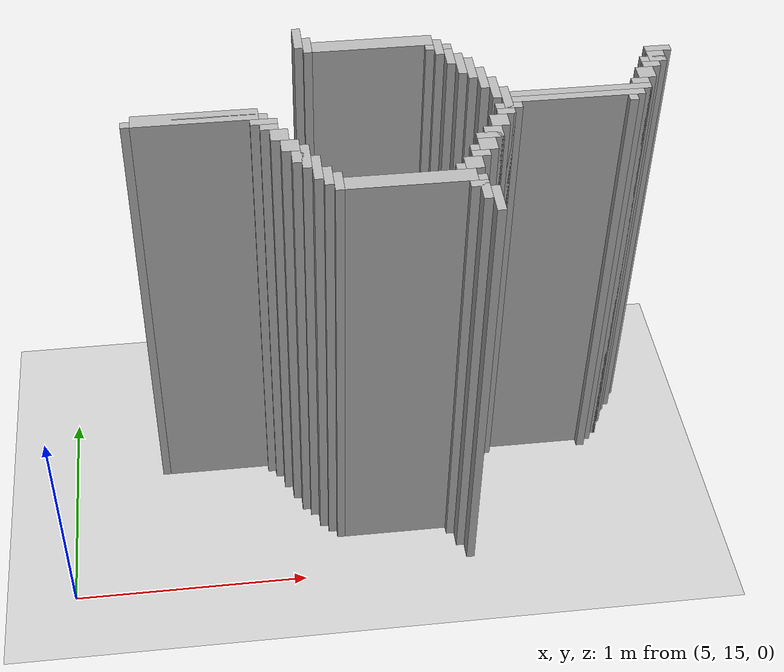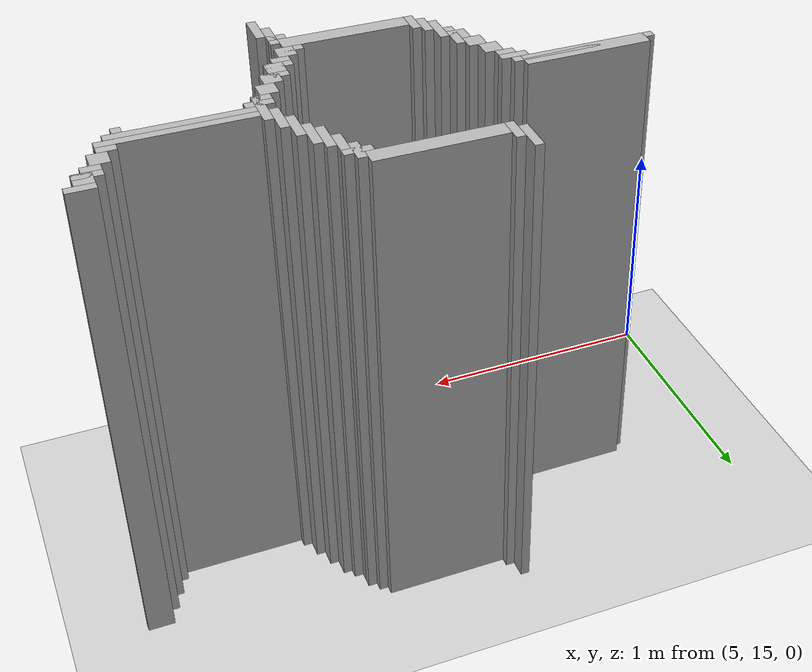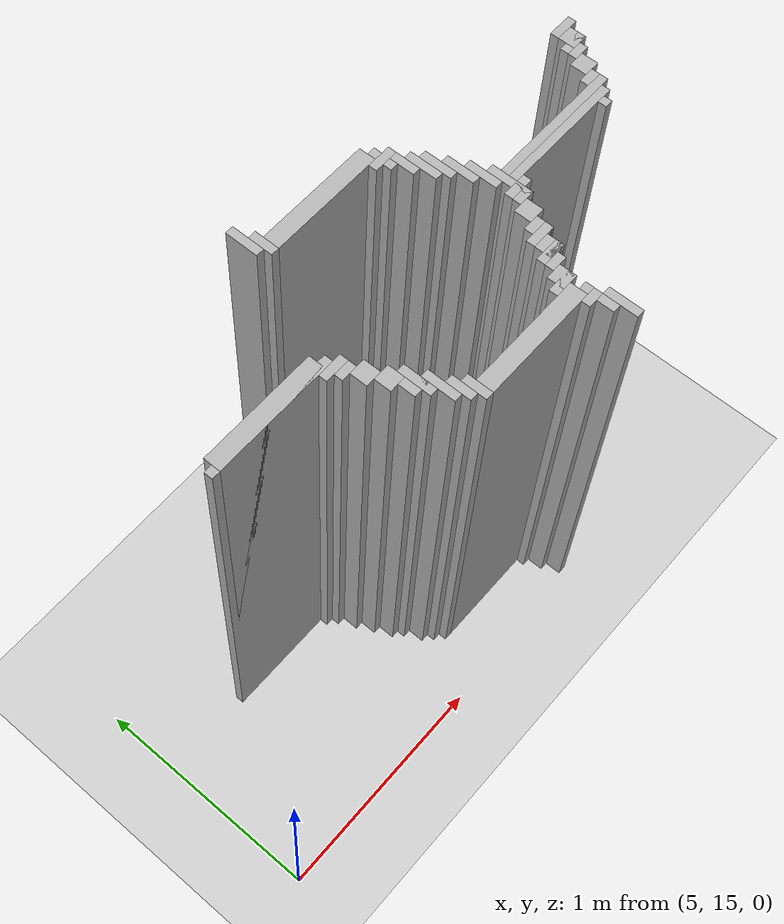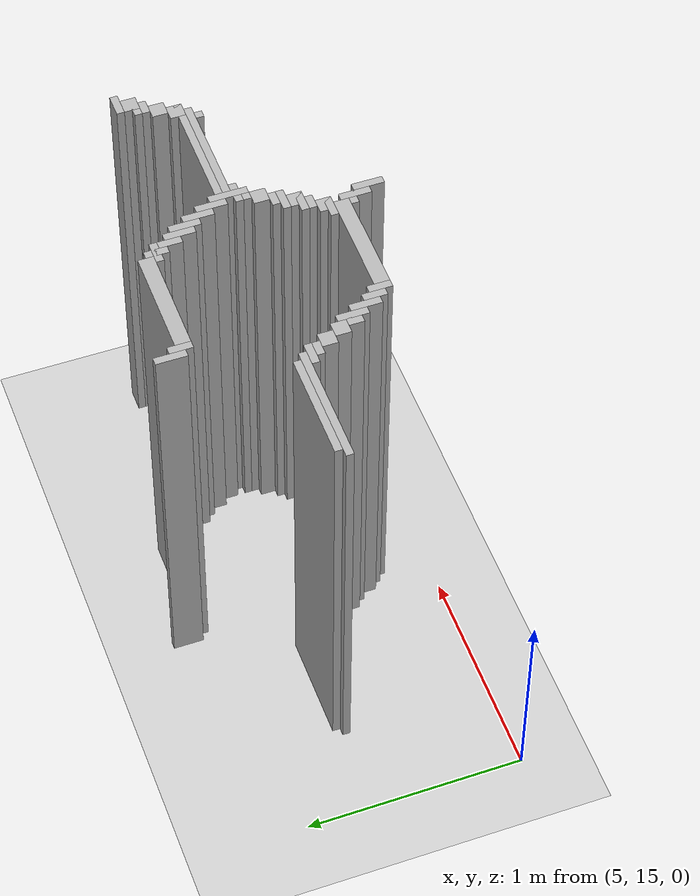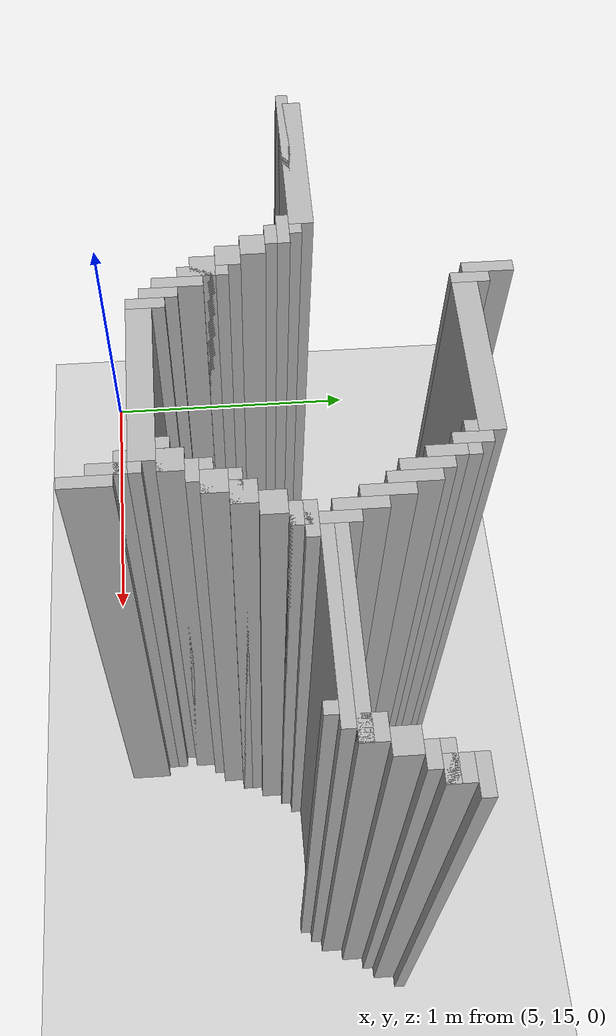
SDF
<sdf version="1.6">
 <world name="slam_world">
  <model name="ground_plane">
   <static>true</static>
   <link name="link">
    <collision name="collision">
     <geometry><plane><normal>0 0 1</normal><size>100 100</size></plane></geometry>
    </collision>
    <visual name="visual">
     <geometry><plane><normal>0 0 1</normal><size>100 100</size></plane></geometry>
     <material>
      <ambient>0.8 0.8 0.8 1</ambient>
      <diffuse>0.8 0.8 0.8 1</diffuse>
      <specular>0.8 0.8 0.8 1</specular>
     </material>
    </visual>
   </link>
  </model>
  <model name="wall_373">
   <static>true</static>
   <pose>6.107888631090487 16.183294663573086 1.0 0 0 0</pose>
   <link name="link">
    <collision name="collision">
     <geometry><box><size>0.03480278422273782 0.13921113689095127 2.0</size></box></geometry>
    </collision>
    <visual name="visual">
     <geometry><box><size>0.03480278422273782 0.13921113689095127 2.0</size></box></geometry>
     <material><ambient>0.5 0.5 0.5 1</ambient><diffuse>0.7 0.7 0.7 1</diffuse></material>
    </visual>
   </link>
  </model>
  <model name="wall_395">
   <static>true</static>
   <pose>6.142691415313225 16.13109048723898 1.0 0 0 0</pose>
   <link name="link">
    <collision name="collision">
     <geometry><box><size>0.03480278422273782 0.10440835266821345 2.0</size></box></geometry>
    </collision>
    <visual name="visual">
     <geometry><box><size>0.03480278422273782 0.10440835266821345 2.0</size></box></geometry>
     <material><ambient>0.5 0.5 0.5 1</ambient><diffuse>0.7 0.7 0.7 1</diffuse></material>
    </visual>
   </link>
  </model>
  <model name="wall_409">
   <static>true</static>
   <pose>6.403712296983758 16.113689095127608 1.0 0 0 0</pose>
   <link name="link">
    <collision name="collision">
     <geometry><box><size>0.4872389791183295 0.06960556844547564 2.0</size></box></geometry>
    </collision>
    <visual name="visual">
     <geometry><box><size>0.4872389791183295 0.06960556844547564 2.0</size></box></geometry>
     <material><ambient>0.5 0.5 0.5 1</ambient><diffuse>0.7 0.7 0.7 1</diffuse></material>
    </visual>
   </link>
  </model>
  <model name="wall_421">
   <static>true</static>
   <pose>6.664733178654292 16.061484918793504 1.0 0 0 0</pose>
   <link name="link">
    <collision name="collision">
     <geometry><box><size>0.03480278422273782 0.10440835266821345 2.0</size></box></geometry>
    </collision>
    <visual name="visual">
     <geometry><box><size>0.03480278422273782 0.10440835266821345 2.0</size></box></geometry>
     <material><ambient>0.5 0.5 0.5 1</ambient><diffuse>0.7 0.7 0.7 1</diffuse></material>
    </visual>
   </link>
  </model>
  <model name="wall_434">
   <static>true</static>
   <pose>6.664733178654292 16.061484918793504 1.0 0 0 0</pose>
   <link name="link">
    <collision name="collision">
     <geometry><box><size>0.10440835266821345 0.03480278422273782 2.0</size></box></geometry>
    </collision>
    <visual name="visual">
     <geometry><box><size>0.10440835266821345 0.03480278422273782 2.0</size></box></geometry>
     <material><ambient>0.5 0.5 0.5 1</ambient><diffuse>0.7 0.7 0.7 1</diffuse></material>
    </visual>
   </link>
  </model>
  <model name="wall_448">
   <static>true</static>
   <pose>6.69953596287703 15.991879350348027 1.0 0 0 0</pose>
   <link name="link">
    <collision name="collision">
     <geometry><box><size>0.03480278422273782 0.10440835266821345 2.0</size></box></geometry>
    </collision>
    <visual name="visual">
     <geometry><box><size>0.03480278422273782 0.10440835266821345 2.0</size></box></geometry>
     <material><ambient>0.5 0.5 0.5 1</ambient><diffuse>0.7 0.7 0.7 1</diffuse></material>
    </visual>
   </link>
  </model>
  <model name="wall_462">
   <static>true</static>
   <pose>6.734338747099768 15.93967517401392 1.0 0 0 0</pose>
   <link name="link">
    <collision name="collision">
     <geometry><box><size>0.03480278422273782 0.13921113689095127 2.0</size></box></geometry>
    </collision>
    <visual name="visual">
     <geometry><box><size>0.03480278422273782 0.13921113689095127 2.0</size></box></geometry>
     <material><ambient>0.5 0.5 0.5 1</ambient><diffuse>0.7 0.7 0.7 1</diffuse></material>
    </visual>
   </link>
  </model>
  <model name="wall_476">
   <static>true</static>
   <pose>6.769141531322505 15.904872389791183 1.0 0 0 0</pose>
   <link name="link">
    <collision name="collision">
     <geometry><box><size>0.03480278422273782 0.13921113689095127 2.0</size></box></geometry>
    </collision>
    <visual name="visual">
     <geometry><box><size>0.03480278422273782 0.13921113689095127 2.0</size></box></geometry>
     <material><ambient>0.5 0.5 0.5 1</ambient><diffuse>0.7 0.7 0.7 1</diffuse></material>
    </visual>
   </link>
  </model>
  <model name="wall_477">
   <static>true</static>
   <pose>7.534802784222737 15.95707656612529 1.0 0 0 0</pose>
   <link name="link">
    <collision name="collision">
     <geometry><box><size>0.10440835266821345 0.03480278422273782 2.0</size></box></geometry>
    </collision>
    <visual name="visual">
     <geometry><box><size>0.10440835266821345 0.03480278422273782 2.0</size></box></geometry>
     <material><ambient>0.5 0.5 0.5 1</ambient><diffuse>0.7 0.7 0.7 1</diffuse></material>
    </visual>
   </link>
  </model>
  <model name="wall_488">
   <static>true</static>
   <pose>7.517401392111369 15.904872389791183 1.0 0 0 0</pose>
   <link name="link">
    <collision name="collision">
     <geometry><box><size>0.06960556844547564 0.06960556844547564 2.0</size></box></geometry>
    </collision>
    <visual name="visual">
     <geometry><box><size>0.06960556844547564 0.06960556844547564 2.0</size></box></geometry>
     <material><ambient>0.5 0.5 0.5 1</ambient><diffuse>0.7 0.7 0.7 1</diffuse></material>
    </visual>
   </link>
  </model>
  <model name="wall_500">
   <static>true</static>
   <pose>6.803944315545244 15.835266821345707 1.0 0 0 0</pose>
   <link name="link">
    <collision name="collision">
     <geometry><box><size>0.03480278422273782 0.13921113689095127 2.0</size></box></geometry>
    </collision>
    <visual name="visual">
     <geometry><box><size>0.03480278422273782 0.13921113689095127 2.0</size></box></geometry>
     <material><ambient>0.5 0.5 0.5 1</ambient><diffuse>0.7 0.7 0.7 1</diffuse></material>
    </visual>
   </link>
  </model>
  <model name="wall_501">
   <static>true</static>
   <pose>7.5 15.887470997679813 1.0 0 0 0</pose>
   <link name="link">
    <collision name="collision">
     <geometry><box><size>0.10440835266821345 0.03480278422273782 2.0</size></box></geometry>
    </collision>
    <visual name="visual">
     <geometry><box><size>0.10440835266821345 0.03480278422273782 2.0</size></box></geometry>
     <material><ambient>0.5 0.5 0.5 1</ambient><diffuse>0.7 0.7 0.7 1</diffuse></material>
    </visual>
   </link>
  </model>
  <model name="wall_512">
   <static>true</static>
   <pose>7.48259860788863 15.852668213457076 1.0 0 0 0</pose>
   <link name="link">
    <collision name="collision">
     <geometry><box><size>0.06960556844547564 0.03480278422273782 2.0</size></box></geometry>
    </collision>
    <visual name="visual">
     <geometry><box><size>0.06960556844547564 0.03480278422273782 2.0</size></box></geometry>
     <material><ambient>0.5 0.5 0.5 1</ambient><diffuse>0.7 0.7 0.7 1</diffuse></material>
    </visual>
   </link>
  </model>
  <model name="wall_522">
   <static>true</static>
   <pose>6.838747099767981 15.765661252900232 1.0 0 0 0</pose>
   <link name="link">
    <collision name="collision">
     <geometry><box><size>0.03480278422273782 0.13921113689095127 2.0</size></box></geometry>
    </collision>
    <visual name="visual">
     <geometry><box><size>0.03480278422273782 0.13921113689095127 2.0</size></box></geometry>
     <material><ambient>0.5 0.5 0.5 1</ambient><diffuse>0.7 0.7 0.7 1</diffuse></material>
    </visual>
   </link>
  </model>
  <model name="wall_523">
   <static>true</static>
   <pose>7.447795823665893 15.80046403712297 1.0 0 0 0</pose>
   <link name="link">
    <collision name="collision">
     <geometry><box><size>0.06960556844547564 0.06960556844547564 2.0</size></box></geometry>
    </collision>
    <visual name="visual">
     <geometry><box><size>0.06960556844547564 0.06960556844547564 2.0</size></box></geometry>
     <material><ambient>0.5 0.5 0.5 1</ambient><diffuse>0.7 0.7 0.7 1</diffuse></material>
    </visual>
   </link>
  </model>
  <model name="wall_536">
   <static>true</static>
   <pose>6.8735498839907185 15.678654292343387 1.0 0 0 0</pose>
   <link name="link">
    <collision name="collision">
     <geometry><box><size>0.03480278422273782 0.17401392111368907 2.0</size></box></geometry>
    </collision>
    <visual name="visual">
     <geometry><box><size>0.03480278422273782 0.17401392111368907 2.0</size></box></geometry>
     <material><ambient>0.5 0.5 0.5 1</ambient><diffuse>0.7 0.7 0.7 1</diffuse></material>
    </visual>
   </link>
  </model>
  <model name="wall_537">
   <static>true</static>
   <pose>7.412993039443156 15.730858468677493 1.0 0 0 0</pose>
   <link name="link">
    <collision name="collision">
     <geometry><box><size>0.06960556844547564 0.06960556844547564 2.0</size></box></geometry>
    </collision>
    <visual name="visual">
     <geometry><box><size>0.06960556844547564 0.06960556844547564 2.0</size></box></geometry>
     <material><ambient>0.5 0.5 0.5 1</ambient><diffuse>0.7 0.7 0.7 1</diffuse></material>
    </visual>
   </link>
  </model>
  <model name="wall_549">
   <static>true</static>
   <pose>5.672853828306264 15.696055684454755 1.0 0 0 0</pose>
   <link name="link">
    <collision name="collision">
     <geometry><box><size>0.4872389791183295 0.06960556844547564 2.0</size></box></geometry>
    </collision>
    <visual name="visual">
     <geometry><box><size>0.4872389791183295 0.06960556844547564 2.0</size></box></geometry>
     <material><ambient>0.5 0.5 0.5 1</ambient><diffuse>0.7 0.7 0.7 1</diffuse></material>
    </visual>
   </link>
  </model>
  <model name="wall_550">
   <static>true</static>
   <pose>7.16937354988399 15.713457076566124 1.0 0 0 0</pose>
   <link name="link">
    <collision name="collision">
     <geometry><box><size>0.5568445475638051 0.03480278422273782 2.0</size></box></geometry>
    </collision>
    <visual name="visual">
     <geometry><box><size>0.5568445475638051 0.03480278422273782 2.0</size></box></geometry>
     <material><ambient>0.5 0.5 0.5 1</ambient><diffuse>0.7 0.7 0.7 1</diffuse></material>
    </visual>
   </link>
  </model>
  <model name="wall_561">
   <static>true</static>
   <pose>5.672853828306264 15.678654292343387 1.0 0 0 0</pose>
   <link name="link">
    <collision name="collision">
     <geometry><box><size>0.5568445475638051 0.03480278422273782 2.0</size></box></geometry>
    </collision>
    <visual name="visual">
     <geometry><box><size>0.5568445475638051 0.03480278422273782 2.0</size></box></geometry>
     <material><ambient>0.5 0.5 0.5 1</ambient><diffuse>0.7 0.7 0.7 1</diffuse></material>
    </visual>
   </link>
  </model>
  <model name="wall_562">
   <static>true</static>
   <pose>7.151972157772621 15.678654292343387 1.0 0 0 0</pose>
   <link name="link">
    <collision name="collision">
     <geometry><box><size>0.5220417633410672 0.03480278422273782 2.0</size></box></geometry>
    </collision>
    <visual name="visual">
     <geometry><box><size>0.5220417633410672 0.03480278422273782 2.0</size></box></geometry>
     <material><ambient>0.5 0.5 0.5 1</ambient><diffuse>0.7 0.7 0.7 1</diffuse></material>
    </visual>
   </link>
  </model>
  <model name="wall_576">
   <static>true</static>
   <pose>5.933874709976798 15.64385150812065 1.0 0 0 0</pose>
   <link name="link">
    <collision name="collision">
     <geometry><box><size>0.10440835266821345 0.03480278422273782 2.0</size></box></geometry>
    </collision>
    <visual name="visual">
     <geometry><box><size>0.10440835266821345 0.03480278422273782 2.0</size></box></geometry>
     <material><ambient>0.5 0.5 0.5 1</ambient><diffuse>0.7 0.7 0.7 1</diffuse></material>
    </visual>
   </link>
  </model>
  <model name="wall_577">
   <static>true</static>
   <pose>6.8735498839907185 15.64385150812065 1.0 0 0 0</pose>
   <link name="link">
    <collision name="collision">
     <geometry><box><size>0.10440835266821345 0.03480278422273782 2.0</size></box></geometry>
    </collision>
    <visual name="visual">
     <geometry><box><size>0.10440835266821345 0.03480278422273782 2.0</size></box></geometry>
     <material><ambient>0.5 0.5 0.5 1</ambient><diffuse>0.7 0.7 0.7 1</diffuse></material>
    </visual>
   </link>
  </model>
  <model name="wall_578">
   <static>true</static>
   <pose>7.360788863109049 15.64385150812065 1.0 0 0 0</pose>
   <link name="link">
    <collision name="collision">
     <geometry><box><size>0.03480278422273782 0.03480278422273782 2.0</size></box></geometry>
    </collision>
    <visual name="visual">
     <geometry><box><size>0.03480278422273782 0.03480278422273782 2.0</size></box></geometry>
     <material><ambient>0.5 0.5 0.5 1</ambient><diffuse>0.7 0.7 0.7 1</diffuse></material>
    </visual>
   </link>
  </model>
  <model name="wall_596">
   <static>true</static>
   <pose>5.951276102088166 15.609048723897912 1.0 0 0 0</pose>
   <link name="link">
    <collision name="collision">
     <geometry><box><size>0.06960556844547564 0.03480278422273782 2.0</size></box></geometry>
    </collision>
    <visual name="visual">
     <geometry><box><size>0.06960556844547564 0.03480278422273782 2.0</size></box></geometry>
     <material><ambient>0.5 0.5 0.5 1</ambient><diffuse>0.7 0.7 0.7 1</diffuse></material>
    </visual>
   </link>
  </model>
  <model name="wall_597">
   <static>true</static>
   <pose>6.85614849187935 15.609048723897912 1.0 0 0 0</pose>
   <link name="link">
    <collision name="collision">
     <geometry><box><size>0.06960556844547564 0.03480278422273782 2.0</size></box></geometry>
    </collision>
    <visual name="visual">
     <geometry><box><size>0.06960556844547564 0.03480278422273782 2.0</size></box></geometry>
     <material><ambient>0.5 0.5 0.5 1</ambient><diffuse>0.7 0.7 0.7 1</diffuse></material>
    </visual>
   </link>
  </model>
  <model name="wall_613">
   <static>true</static>
   <pose>5.986078886310905 15.556844547563804 1.0 0 0 0</pose>
   <link name="link">
    <collision name="collision">
     <geometry><box><size>0.06960556844547564 0.06960556844547564 2.0</size></box></geometry>
    </collision>
    <visual name="visual">
     <geometry><box><size>0.06960556844547564 0.06960556844547564 2.0</size></box></geometry>
     <material><ambient>0.5 0.5 0.5 1</ambient><diffuse>0.7 0.7 0.7 1</diffuse></material>
    </visual>
   </link>
  </model>
  <model name="wall_614">
   <static>true</static>
   <pose>6.821345707656612 15.556844547563804 1.0 0 0 0</pose>
   <link name="link">
    <collision name="collision">
     <geometry><box><size>0.06960556844547564 0.06960556844547564 2.0</size></box></geometry>
    </collision>
    <visual name="visual">
     <geometry><box><size>0.06960556844547564 0.06960556844547564 2.0</size></box></geometry>
     <material><ambient>0.5 0.5 0.5 1</ambient><diffuse>0.7 0.7 0.7 1</diffuse></material>
    </visual>
   </link>
  </model>
  <model name="wall_630">
   <static>true</static>
   <pose>6.020881670533642 15.48723897911833 1.0 0 0 0</pose>
   <link name="link">
    <collision name="collision">
     <geometry><box><size>0.06960556844547564 0.06960556844547564 2.0</size></box></geometry>
    </collision>
    <visual name="visual">
     <geometry><box><size>0.06960556844547564 0.06960556844547564 2.0</size></box></geometry>
     <material><ambient>0.5 0.5 0.5 1</ambient><diffuse>0.7 0.7 0.7 1</diffuse></material>
    </visual>
   </link>
  </model>
  <model name="wall_631">
   <static>true</static>
   <pose>6.786542923433874 15.48723897911833 1.0 0 0 0</pose>
   <link name="link">
    <collision name="collision">
     <geometry><box><size>0.06960556844547564 0.06960556844547564 2.0</size></box></geometry>
    </collision>
    <visual name="visual">
     <geometry><box><size>0.06960556844547564 0.06960556844547564 2.0</size></box></geometry>
     <material><ambient>0.5 0.5 0.5 1</ambient><diffuse>0.7 0.7 0.7 1</diffuse></material>
    </visual>
   </link>
  </model>
  <model name="wall_647">
   <static>true</static>
   <pose>6.073085846867749 15.417633410672853 1.0 0 0 0</pose>
   <link name="link">
    <collision name="collision">
     <geometry><box><size>0.03480278422273782 0.13921113689095127 2.0</size></box></geometry>
    </collision>
    <visual name="visual">
     <geometry><box><size>0.03480278422273782 0.13921113689095127 2.0</size></box></geometry>
     <material><ambient>0.5 0.5 0.5 1</ambient><diffuse>0.7 0.7 0.7 1</diffuse></material>
    </visual>
   </link>
  </model>
  <model name="wall_648">
   <static>true</static>
   <pose>6.769141531322505 15.46983758700696 1.0 0 0 0</pose>
   <link name="link">
    <collision name="collision">
     <geometry><box><size>0.10440835266821345 0.03480278422273782 2.0</size></box></geometry>
    </collision>
    <visual name="visual">
     <geometry><box><size>0.10440835266821345 0.03480278422273782 2.0</size></box></geometry>
     <material><ambient>0.5 0.5 0.5 1</ambient><diffuse>0.7 0.7 0.7 1</diffuse></material>
    </visual>
   </link>
  </model>
  <model name="wall_661">
   <static>true</static>
   <pose>6.05568445475638 15.417633410672853 1.0 0 0 0</pose>
   <link name="link">
    <collision name="collision">
     <geometry><box><size>0.06960556844547564 0.06960556844547564 2.0</size></box></geometry>
    </collision>
    <visual name="visual">
     <geometry><box><size>0.06960556844547564 0.06960556844547564 2.0</size></box></geometry>
     <material><ambient>0.5 0.5 0.5 1</ambient><diffuse>0.7 0.7 0.7 1</diffuse></material>
    </visual>
   </link>
  </model>
  <model name="wall_662">
   <static>true</static>
   <pose>6.751740139211137 15.417633410672853 1.0 0 0 0</pose>
   <link name="link">
    <collision name="collision">
     <geometry><box><size>0.06960556844547564 0.06960556844547564 2.0</size></box></geometry>
    </collision>
    <visual name="visual">
     <geometry><box><size>0.06960556844547564 0.06960556844547564 2.0</size></box></geometry>
     <material><ambient>0.5 0.5 0.5 1</ambient><diffuse>0.7 0.7 0.7 1</diffuse></material>
    </visual>
   </link>
  </model>
  <model name="wall_676">
   <static>true</static>
   <pose>6.107888631090487 15.348027842227378 1.0 0 0 0</pose>
   <link name="link">
    <collision name="collision">
     <geometry><box><size>0.03480278422273782 0.13921113689095127 2.0</size></box></geometry>
    </collision>
    <visual name="visual">
     <geometry><box><size>0.03480278422273782 0.13921113689095127 2.0</size></box></geometry>
     <material><ambient>0.5 0.5 0.5 1</ambient><diffuse>0.7 0.7 0.7 1</diffuse></material>
    </visual>
   </link>
  </model>
  <model name="wall_677">
   <static>true</static>
   <pose>6.734338747099768 15.400232018561484 1.0 0 0 0</pose>
   <link name="link">
    <collision name="collision">
     <geometry><box><size>0.10440835266821345 0.03480278422273782 2.0</size></box></geometry>
    </collision>
    <visual name="visual">
     <geometry><box><size>0.10440835266821345 0.03480278422273782 2.0</size></box></geometry>
     <material><ambient>0.5 0.5 0.5 1</ambient><diffuse>0.7 0.7 0.7 1</diffuse></material>
    </visual>
   </link>
  </model>
  <model name="wall_689">
   <static>true</static>
   <pose>6.716937354988398 15.365429234338746 1.0 0 0 0</pose>
   <link name="link">
    <collision name="collision">
     <geometry><box><size>0.06960556844547564 0.03480278422273782 2.0</size></box></geometry>
    </collision>
    <visual name="visual">
     <geometry><box><size>0.06960556844547564 0.03480278422273782 2.0</size></box></geometry>
     <material><ambient>0.5 0.5 0.5 1</ambient><diffuse>0.7 0.7 0.7 1</diffuse></material>
    </visual>
   </link>
  </model>
  <model name="wall_701">
   <static>true</static>
   <pose>6.142691415313225 15.295823665893272 1.0 0 0 0</pose>
   <link name="link">
    <collision name="collision">
     <geometry><box><size>0.03480278422273782 0.10440835266821345 2.0</size></box></geometry>
    </collision>
    <visual name="visual">
     <geometry><box><size>0.03480278422273782 0.10440835266821345 2.0</size></box></geometry>
     <material><ambient>0.5 0.5 0.5 1</ambient><diffuse>0.7 0.7 0.7 1</diffuse></material>
    </visual>
   </link>
  </model>
  <model name="wall_702">
   <static>true</static>
   <pose>6.682134570765661 15.31322505800464 1.0 0 0 0</pose>
   <link name="link">
    <collision name="collision">
     <geometry><box><size>0.06960556844547564 0.06960556844547564 2.0</size></box></geometry>
    </collision>
    <visual name="visual">
     <geometry><box><size>0.06960556844547564 0.06960556844547564 2.0</size></box></geometry>
     <material><ambient>0.5 0.5 0.5 1</ambient><diffuse>0.7 0.7 0.7 1</diffuse></material>
    </visual>
   </link>
  </model>
  <model name="wall_718">
   <static>true</static>
   <pose>6.177494199535962 15.261020881670532 1.0 0 0 0</pose>
   <link name="link">
    <collision name="collision">
     <geometry><box><size>0.03480278422273782 0.10440835266821345 2.0</size></box></geometry>
    </collision>
    <visual name="visual">
     <geometry><box><size>0.03480278422273782 0.10440835266821345 2.0</size></box></geometry>
     <material><ambient>0.5 0.5 0.5 1</ambient><diffuse>0.7 0.7 0.7 1</diffuse></material>
    </visual>
   </link>
  </model>
  <model name="wall_719">
   <static>true</static>
   <pose>6.664733178654292 15.295823665893272 1.0 0 0 0</pose>
   <link name="link">
    <collision name="collision">
     <geometry><box><size>0.10440835266821345 0.03480278422273782 2.0</size></box></geometry>
    </collision>
    <visual name="visual">
     <geometry><box><size>0.10440835266821345 0.03480278422273782 2.0</size></box></geometry>
     <material><ambient>0.5 0.5 0.5 1</ambient><diffuse>0.7 0.7 0.7 1</diffuse></material>
    </visual>
   </link>
  </model>
  <model name="wall_732">
   <static>true</static>
   <pose>6.438515081206496 15.243619489559164 1.0 0 0 0</pose>
   <link name="link">
    <collision name="collision">
     <geometry><box><size>0.4872389791183295 0.06960556844547564 2.0</size></box></geometry>
    </collision>
    <visual name="visual">
     <geometry><box><size>0.4872389791183295 0.06960556844547564 2.0</size></box></geometry>
     <material><ambient>0.5 0.5 0.5 1</ambient><diffuse>0.7 0.7 0.7 1</diffuse></material>
    </visual>
   </link>
  </model>
  <model name="wall_742">
   <static>true</static>
   <pose>6.69953596287703 15.174013921113689 1.0 0 0 0</pose>
   <link name="link">
    <collision name="collision">
     <geometry><box><size>0.03480278422273782 0.13921113689095127 2.0</size></box></geometry>
    </collision>
    <visual name="visual">
     <geometry><box><size>0.03480278422273782 0.13921113689095127 2.0</size></box></geometry>
     <material><ambient>0.5 0.5 0.5 1</ambient><diffuse>0.7 0.7 0.7 1</diffuse></material>
    </visual>
   </link>
  </model>
  <model name="wall_754">
   <static>true</static>
   <pose>6.682134570765661 15.191415313225058 1.0 0 0 0</pose>
   <link name="link">
    <collision name="collision">
     <geometry><box><size>0.06960556844547564 0.03480278422273782 2.0</size></box></geometry>
    </collision>
    <visual name="visual">
     <geometry><box><size>0.06960556844547564 0.03480278422273782 2.0</size></box></geometry>
     <material><ambient>0.5 0.5 0.5 1</ambient><diffuse>0.7 0.7 0.7 1</diffuse></material>
    </visual>
   </link>
  </model>
  <model name="wall_766">
   <static>true</static>
   <pose>6.734338747099768 15.104408352668212 1.0 0 0 0</pose>
   <link name="link">
    <collision name="collision">
     <geometry><box><size>0.03480278422273782 0.13921113689095127 2.0</size></box></geometry>
    </collision>
    <visual name="visual">
     <geometry><box><size>0.03480278422273782 0.13921113689095127 2.0</size></box></geometry>
     <material><ambient>0.5 0.5 0.5 1</ambient><diffuse>0.7 0.7 0.7 1</diffuse></material>
    </visual>
   </link>
  </model>
 </world>
</sdf>
